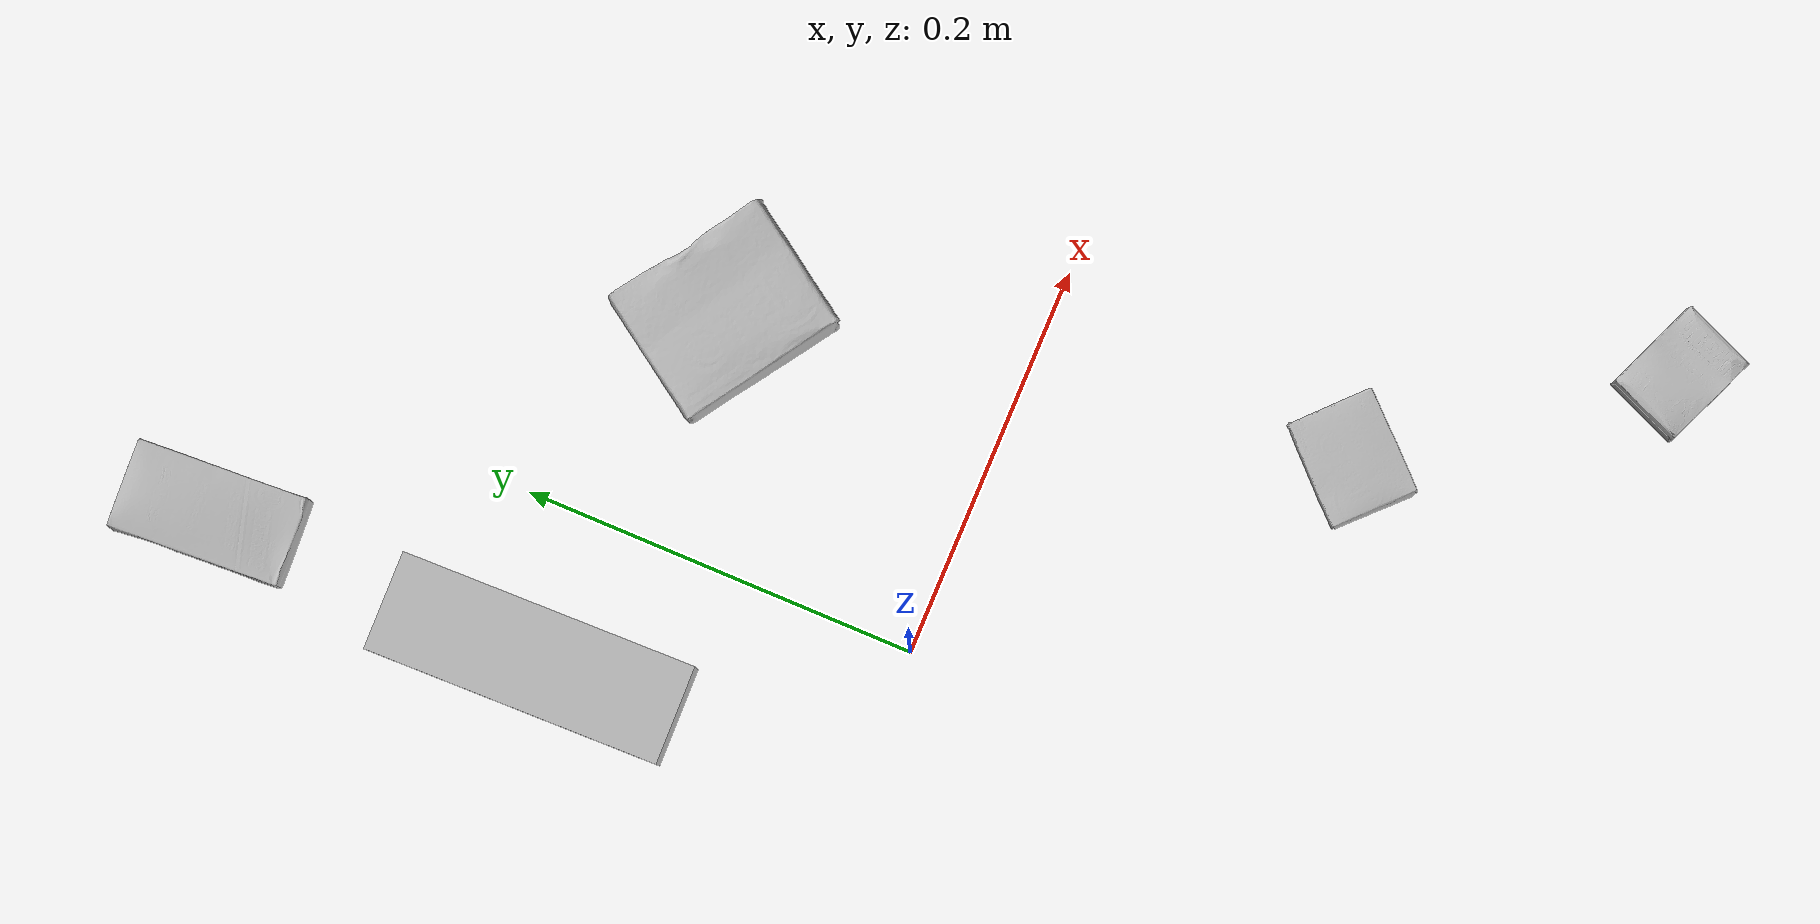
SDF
<sdf version="1.4">
  <world name="default">
    <light name="light1" type="point">
      <pose>0 0 1 0 0 0</pose>
      <diffuse>3 3 3 1</diffuse>
      <specular>3 3 3 1</specular>
    </light>
    <light name="light2" type="point">
      <pose>0 0.5 2 0 0 0</pose>
      <diffuse>1 1 1 1</diffuse>
      <specular>1 1 1 1</specular>
    </light>
    <light name="light3" type="point">
      <pose>0 0.5 2 0 0 0</pose>
      <diffuse>3 3 3 1</diffuse>
      <specular>3 3 3 1</specular>
    </light>
    <scene>
      <ambient>0.7 0.7 0.7</ambient>
    </scene>
    <model name="box1">
      <link name="link_box1">
        <collision name="default">
          <geometry>
            <mesh>
              <uri>model://sugar_box/collision_meshes/collision.obj</uri>
              <scale>0.5 0.5 0.5</scale>
            </mesh>
          </geometry>
          <surface>
            <friction>
              <ode>
                <mu>0.5</mu>
                <mu2>0.5</mu2>
              </ode>
            </friction>
          <contact>
        <ode>
            <max_vel>0</max_vel>
            <min_depth>0.0001</min_depth>
            <kp>1e8</kp>
        </ode>
    </contact></surface>
        </collision>
        <visual name="default">
          <geometry>
            <mesh>
              <uri>model://sugar_box/visual_meshes/visual.dae</uri>
              <scale>0.5 0.5 0.5</scale>
            </mesh>
          </geometry>
        </visual>
        <inertial>
          <mass>0.050072960555553436</mass>
          <pose>0.0005171863595023751 1.924554817378521e-05 -0.00018182402709499002 -0.0004046260967901466 0.0010506635218491861 0.0026153785561980193</pose>
          <inertia>
            <ixx>1.0430162e-05</ixx>
            <iyy>3.371243e-05</iyy>
            <izz>4.0357794e-05</izz>
            <ixy>0</ixy>
            <ixz>0</ixz>
            <iyz>0</iyz>
          </inertia>
        </inertial>
      </link>
      <pose>-0.0691271647810936 0.3365933299064636 0.011399302631616592 0.0007752602755840206 -0.023432438072105616 1.6201387750648446</pose>
    </model>
    <model name="box2">
      <link name="link_box2">
        <collision name="default">
          <geometry>
            <mesh>
              <uri>model://pudding_box/collision_meshes/collision.obj</uri>
              <scale>0.5 0.5 0.5</scale>
            </mesh>
          </geometry>
          <surface>
            <friction>
              <ode>
                <mu>0.5</mu>
                <mu2>0.5</mu2>
              </ode>
            </friction>
          <contact>
        <ode>
            <max_vel>0</max_vel>
            <min_depth>0.0001</min_depth>
            <kp>1e8</kp>
        </ode>
    </contact></surface>
        </collision>
        <visual name="default">
          <geometry>
            <mesh>
              <uri>model://pudding_box/visual_meshes/visual.dae</uri>
              <scale>0.5 0.5 0.5</scale>
            </mesh>
          </geometry>
        </visual>
        <inertial>
          <mass>0.026034390553832054</mass>
          <pose>0.00024474109522998333 0.00040339428232982755 -0.0002594413817860186 0.005213101355963405 -0.006603798228586091 0.020079817710543634</pose>
          <inertia>
            <ixx>7.3576343e-06</ixx>
            <iyy>4.9502682e-06</iyy>
            <izz>1.086547e-05</izz>
            <ixy>0</ixy>
            <ixz>0</ixz>
            <iyz>0</iyz>
          </inertia>
        </inertial>
      </link>
      <pose>0.16737467050552368 -0.16040004789829254 0.009862905368208885 0.022348395637998026 -0.011391822035348055 -0.7676237247975887</pose>
    </model>
    <model name="box3">
      <link name="link_box3">
        <collision name="default">
          <geometry>
            <mesh>
              <uri>model://jenga/collision_meshes/collision.obj</uri>
              <scale>1.0 1.0 1.0</scale>
            </mesh>
          </geometry>
          <surface>
            <friction>
              <ode>
                <mu>0.5</mu>
                <mu2>0.5</mu2>
              </ode>
            </friction>
          <contact>
        <ode>
            <max_vel>0</max_vel>
            <min_depth>0.0001</min_depth>
            <kp>1e8</kp>
        </ode>
    </contact></surface>
        </collision>
        <visual name="default">
          <geometry>
            <mesh>
              <uri>model://jenga/visual_meshes/visual.dae</uri>
              <scale>1.0 1.0 1.0</scale>
            </mesh>
          </geometry>
        </visual>
        <inertial>
          <mass>0.2076648771762848</mass>
          <pose>-2.502856091268768e-07 -0.00010250010382151231 -4.0923405322246253e-05 0.0 -7.34215461761844e-07 0.0</pose>
          <inertia>
            <ixx>5.746591e-05</ixx>
            <iyy>0.00038938745</iyy>
            <izz>0.0004157042</izz>
            <ixy>0</ixy>
            <ixz>0</ixz>
            <iyz>0</iyz>
          </inertia>
        </inertial>
      </link>
      <pose>-0.07370678335428238 0.16591735184192657 0.014999995008111 1.240952970860937e-08 1.012250659781066e-09 -1.5505302312271017</pose>
    </model>
    <model name="box4">
      <link name="link_box4">
        <collision name="default">
          <geometry>
            <mesh>
              <uri>model://gelatin_box/collision_meshes/collision.obj</uri>
              <scale>1.0 1.0 1.0</scale>
            </mesh>
          </geometry>
          <surface>
            <friction>
              <ode>
                <mu>0.5</mu>
                <mu2>0.5</mu2>
              </ode>
            </friction>
          <contact>
        <ode>
            <max_vel>0</max_vel>
            <min_depth>0.0001</min_depth>
            <kp>1e8</kp>
        </ode>
    </contact></surface>
        </collision>
        <visual name="default">
          <geometry>
            <mesh>
              <uri>model://gelatin_box/visual_meshes/visual.dae</uri>
              <scale>1.0 1.0 1.0</scale>
            </mesh>
          </geometry>
        </visual>
        <inertial>
          <mass>0.09577830880880356</mass>
          <pose>0.000431961816502735 0.00011156871187267825 -0.0003640321083366871 -0.0010503719862657887 -0.004755821487046037 0.01644055388468454</pose>
          <inertia>
            <ixx>6.761167e-05</ixx>
            <iyy>4.8294667e-05</iyy>
            <izz>0.00010292002</izz>
            <ixy>0</ixy>
            <ixz>0</ixz>
            <iyz>0</iyz>
          </inertia>
        </inertial>
      </link>
      <pose>0.11660104990005493 0.14597252011299133 0.015168310143053532 0.005597422271328644 -0.007304494124452855 0.9688231843243837</pose>
    </model>
    <model name="box5">
      <link name="link_box5">
        <collision name="default">
          <geometry>
            <mesh>
              <uri>model://cracker_box/collision_meshes/collision.obj</uri>
              <scale>0.25 0.25 0.25</scale>
            </mesh>
          </geometry>
          <surface>
            <friction>
              <ode>
                <mu>0.5</mu>
                <mu2>0.5</mu2>
              </ode>
            </friction>
          <contact>
        <ode>
            <max_vel>0</max_vel>
            <min_depth>0.0001</min_depth>
            <kp>1e8</kp>
        </ode>
    </contact></surface>
        </collision>
        <visual name="default">
          <geometry>
            <mesh>
              <uri>model://cracker_box/visual_meshes/visual.dae</uri>
              <scale>0.25 0.25 0.25</scale>
            </mesh>
          </geometry>
        </visual>
        <inertial>
          <mass>0.019404999911785126</mass>
          <pose>0.00023660343140363693 6.358561950037256e-05 -0.00042573839891701937 -0.00031620745436260704 -0.011106489600575076 0.0025467952338677235</pose>
          <inertia>
            <ixx>3.084854e-06</ixx>
            <iyy>5.093699e-06</iyy>
            <izz>7.269177e-06</izz>
            <ixy>0</ixy>
            <ixz>0</ixz>
            <iyz>0</iyz>
          </inertia>
        </inertial>
      </link>
      <pose>0.26713669300079346 -0.2915040850639343 0.009120449423789978 -0.011787954093023889 -0.00736716096667301 2.740739635807194</pose>
    </model>
  <physics type="ode">
      <max_contacts>50</max_contacts>
      <ode>
        <solver>
          <type>quick</type>
          <iters>75</iters>
        </solver>
        <constraints>
          <contact_max_correcting_vel>0</contact_max_correcting_vel>
          <contact_surface_layer>0</contact_surface_layer>
        </constraints>
      </ode>
    </physics></world>
</sdf>
